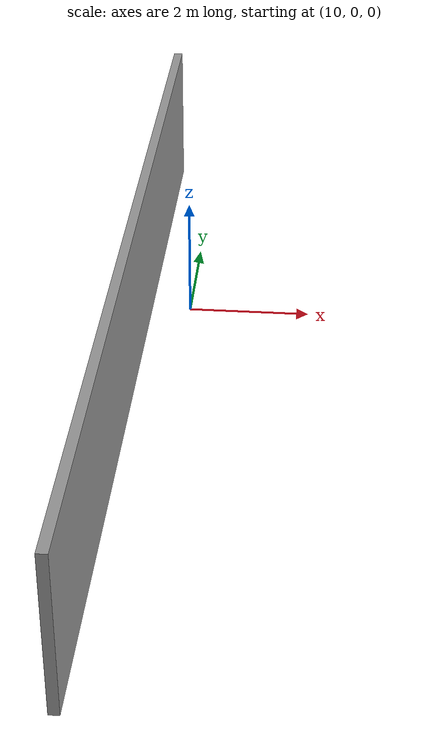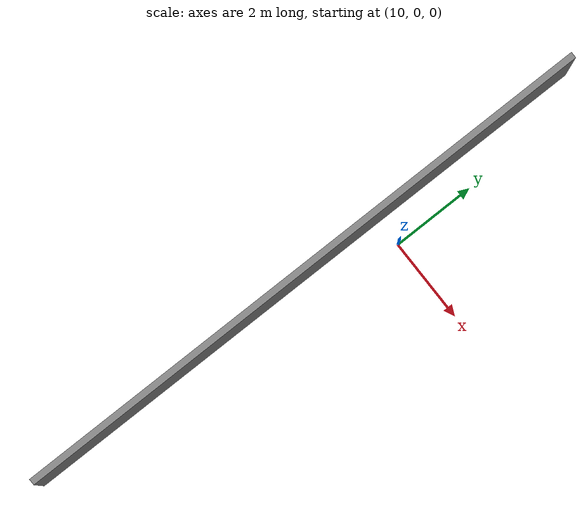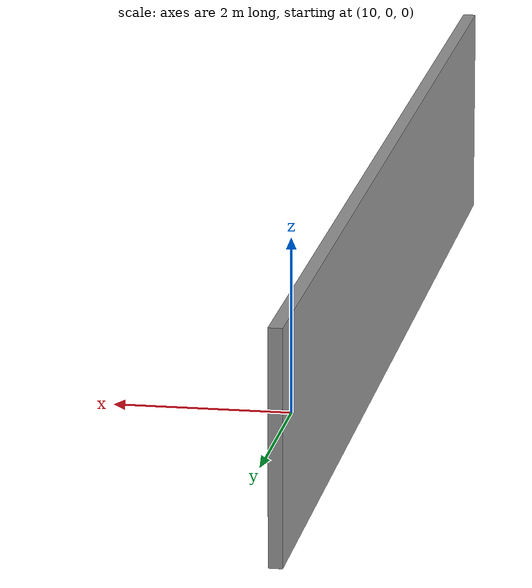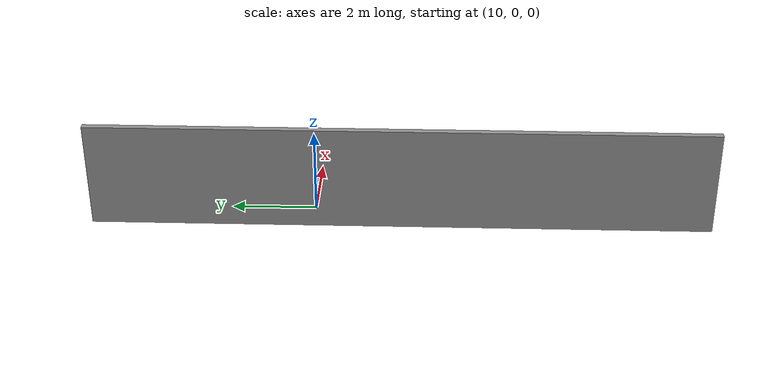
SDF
<?xml version='1.0'?>
<sdf version='1.6'>
  <model name='wall'>
    <pose frame=''>9.28042 -2.03661 0 0 -0 0</pose>
    <link name='Wall_4'>
      <collision name='Wall_4_Collision'>
        <geometry>
          <box>
            <size>14.5 0.15 2.5</size>
          </box>
        </geometry>
        <pose frame=''>0 0 1.25 0 -0 0</pose>
      </collision>
      <visual name='Wall_4_Visual'>
        <pose frame=''>0 0 1.25 0 -0 0</pose>
        <geometry>
          <box>
            <size>14.5 0.15 2.5</size>
          </box>
        </geometry>
        <material>
          <script>
            <uri>file://media/materials/scripts/gazebo.material</uri>
            <name>Gazebo/Grey</name>
          </script>
          <ambient>1 1 1 1</ambient>
        </material>
      </visual>
      <pose frame=''>0 0 0 0 0 -1.5708</pose>
    </link>
    <static>1</static>
  </model>
</sdf>
